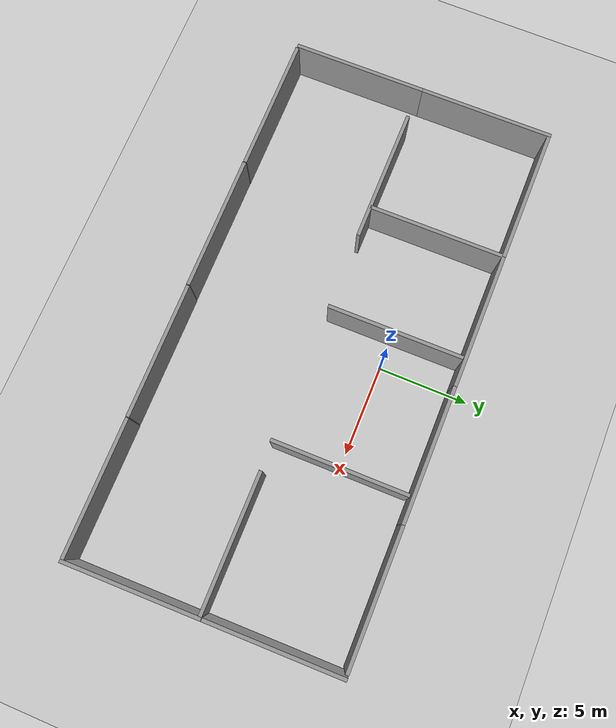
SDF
<sdf version="1.7">
 <world name="default">
  <light name="sun" type="directional">
   <pose>0 0 10 0 -0 0</pose>
   <diffuse>0.8 0.8 0.8 1</diffuse>
   <specular>0.2 0.2 0.2 1</specular>
   <attenuation>
    <range>1000</range>
    <constant>0.9</constant>
    <linear>0.01</linear>
    <quadratic>0.001</quadratic>
   </attenuation>
   <direction>-0.5 0.1 -0.9</direction>
   <spot><inner_angle>0</inner_angle><outer_angle>0</outer_angle><falloff>0</falloff></spot>
  </light>
  <model name="ground_plane">
   <static>1</static>
   <link name="link">
    <collision name="collision">
     <geometry><plane><normal>0 0 1</normal><size>100 100</size></plane></geometry>
     <surface><friction><ode><mu>100</mu><mu2>50</mu2></ode></friction></surface>
    </collision>
    <visual name="visual">
     <cast_shadows>0</cast_shadows>
     <geometry><plane><normal>0 0 1</normal><size>100 100</size></plane></geometry>
     <material>
      <script><uri>file://media/materials/scripts/gazebo.material</uri><name>Gazebo/Grey</name></script>
     </material>
    </visual>
   </link>
  </model>
  <gravity>0 0 -9.8</gravity>
  <magnetic_field>6e-06 2.3e-05 -4.2e-05</magnetic_field>
  <atmosphere type="adiabatic"/>
  <physics type="ode">
   <max_step_size>0.001</max_step_size>
   <real_time_factor>1</real_time_factor>
   <real_time_update_rate>1000</real_time_update_rate>
  </physics>
  <scene><ambient>0.4 0.4 0.4 1</ambient><background>0.7 0.7 0.7 1</background><shadows>1</shadows></scene>
  <audio><device>default</device></audio>
  <spherical_coordinates>
   <surface_model>EARTH_WGS84</surface_model>
   <latitude_deg>0</latitude_deg>
   <longitude_deg>0</longitude_deg>
   <elevation>0</elevation>
   <heading_deg>0</heading_deg>
  </spherical_coordinates>
  <model name="grey_wall">
   <static>1</static>
   <link name="link">
    <pose>0 0 1.4 0 -0 0</pose>
    <collision name="collision"><geometry><box><size>7.5 0.2 2.8</size></box></geometry></collision>
    <visual name="visual">
     <cast_shadows>0</cast_shadows>
     <geometry><box><size>7.5 0.2 2.8</size></box></geometry>
     <material>
      <script>
       <uri>model://grey_wall/materials/scripts</uri>
       <uri>model://grey_wall/materials/textures</uri>
       <name>vrc/grey_wall</name>
      </script>
     </material>
    </visual>
   </link>
   <pose>-3.76263 3.93263 0 0 -0 0</pose>
  </model>
  <model name="grey_wall_clone">
   <static>1</static>
   <link name="link">
    <pose>0 0 1.4 0 -0 0</pose>
    <collision name="collision"><geometry><box><size>7.5 0.2 2.8</size></box></geometry></collision>
    <visual name="visual">
     <cast_shadows>0</cast_shadows>
     <geometry><box><size>7.5 0.2 2.8</size></box></geometry>
     <material>
      <script>
       <uri>model://grey_wall/materials/scripts</uri>
       <uri>model://grey_wall/materials/textures</uri>
       <name>vrc/grey_wall</name>
      </script>
     </material>
    </visual>
   </link>
   <pose>3.70168 3.92505 0 0 -0 0</pose>
  </model>
  <model name="grey_wall_clone_0">
   <static>1</static>
   <link name="link">
    <pose>0 0 1.4 0 -0 0</pose>
    <collision name="collision"><geometry><box><size>7.5 0.2 2.8</size></box></geometry></collision>
    <visual name="visual">
     <cast_shadows>0</cast_shadows>
     <geometry><box><size>7.5 0.2 2.8</size></box></geometry>
     <material>
      <script>
       <uri>model://grey_wall/materials/scripts</uri>
       <uri>model://grey_wall/materials/textures</uri>
       <name>vrc/grey_wall</name>
      </script>
     </material>
    </visual>
   </link>
   <pose>-11.2675 3.93338 0 0 -0 0</pose>
  </model>
  <model name="grey_wall_clone_clone">
   <static>1</static>
   <link name="link">
    <pose>0 0 1.4 0 -0 0</pose>
    <collision name="collision"><geometry><box><size>7.5 0.2 2.8</size></box></geometry></collision>
    <visual name="visual">
     <cast_shadows>0</cast_shadows>
     <geometry><box><size>7.5 0.2 2.8</size></box></geometry>
     <material>
      <script>
       <uri>model://grey_wall/materials/scripts</uri>
       <uri>model://grey_wall/materials/textures</uri>
       <name>vrc/grey_wall</name>
      </script>
     </material>
    </visual>
   </link>
   <pose>11.1973 3.92886 0 0 -0 0</pose>
  </model>
  <model name="grey_wall_clone_0_clone">
   <static>1</static>
   <link name="link">
    <pose>0 0 1.4 0 -0 0</pose>
    <collision name="collision"><geometry><box><size>7.5 0.2 2.8</size></box></geometry></collision>
    <visual name="visual">
     <cast_shadows>0</cast_shadows>
     <geometry><box><size>7.5 0.2 2.8</size></box></geometry>
     <material>
      <script>
       <uri>model://grey_wall/materials/scripts</uri>
       <uri>model://grey_wall/materials/textures</uri>
       <name>vrc/grey_wall</name>
      </script>
     </material>
    </visual>
   </link>
   <pose>-15.0773 0.270696 0 0 -0 1.57603</pose>
  </model>
  <model name="grey_wall_clone_0_clone_clone">
   <static>1</static>
   <link name="link">
    <pose>0 0 1.4 0 -0 0</pose>
    <collision name="collision"><geometry><box><size>7.5 0.2 2.8</size></box></geometry></collision>
    <visual name="visual">
     <cast_shadows>0</cast_shadows>
     <geometry><box><size>7.5 0.2 2.8</size></box></geometry>
     <material>
      <script>
       <uri>model://grey_wall/materials/scripts</uri>
       <uri>model://grey_wall/materials/textures</uri>
       <name>vrc/grey_wall</name>
      </script>
     </material>
    </visual>
   </link>
   <pose>15.1887 0.283536 0 0 -0 1.5831</pose>
  </model>
  <model name="grey_wall_clone_0_clone_clone_clone">
   <static>1</static>
   <link name="link">
    <pose>0 0 1.4 0 -0 0</pose>
    <collision name="collision"><geometry><box><size>7.5 0.2 2.8</size></box></geometry></collision>
    <visual name="visual">
     <cast_shadows>0</cast_shadows>
     <geometry><box><size>7.5 0.2 2.8</size></box></geometry>
     <material>
      <script>
       <uri>model://grey_wall/materials/scripts</uri>
       <uri>model://grey_wall/materials/textures</uri>
       <name>vrc/grey_wall</name>
      </script>
     </material>
    </visual>
   </link>
   <pose>15.2818 -7.23348 0 0 -0 1.5831</pose>
  </model>
  <model name="grey_wall_clone_0_clone_clone_0">
   <static>1</static>
   <link name="link">
    <pose>0 0 1.4 0 -0 0</pose>
    <collision name="collision"><geometry><box><size>7.5 0.2 2.8</size></box></geometry></collision>
    <visual name="visual">
     <cast_shadows>0</cast_shadows>
     <geometry><box><size>7.5 0.2 2.8</size></box></geometry>
     <material>
      <script>
       <uri>model://grey_wall/materials/scripts</uri>
       <uri>model://grey_wall/materials/textures</uri>
       <name>vrc/grey_wall</name>
      </script>
     </material>
    </visual>
   </link>
   <pose>-15.037 -7.21703 0 0 -0 1.57603</pose>
  </model>
  <model name="grey_wall_clone_clone_clone">
   <static>1</static>
   <link name="link">
    <pose>0 0 1.4 0 -0 0</pose>
    <collision name="collision"><geometry><box><size>7.5 0.2 2.8</size></box></geometry></collision>
    <visual name="visual">
     <cast_shadows>0</cast_shadows>
     <geometry><box><size>7.5 0.2 2.8</size></box></geometry>
     <material>
      <script>
       <uri>model://grey_wall/materials/scripts</uri>
       <uri>model://grey_wall/materials/textures</uri>
       <name>vrc/grey_wall</name>
      </script>
     </material>
    </visual>
   </link>
   <pose>11.4856 -10.8946 0 0 -0 0</pose>
  </model>
  <model name="grey_wall_clone_clone_clone_clone">
   <static>1</static>
   <link name="link">
    <pose>0 0 1.4 0 -0 0</pose>
    <collision name="collision"><geometry><box><size>7.5 0.2 2.8</size></box></geometry></collision>
    <visual name="visual">
     <cast_shadows>0</cast_shadows>
     <geometry><box><size>7.5 0.2 2.8</size></box></geometry>
     <material>
      <script>
       <uri>model://grey_wall/materials/scripts</uri>
       <uri>model://grey_wall/materials/textures</uri>
       <name>vrc/grey_wall</name>
      </script>
     </material>
    </visual>
   </link>
   <pose>3.9499 -10.906 0 0 -0 0</pose>
  </model>
  <model name="grey_wall_clone_clone_clone_clone_clone">
   <static>1</static>
   <link name="link">
    <pose>0 0 1.4 0 -0 0</pose>
    <collision name="collision"><geometry><box><size>7.5 0.2 2.8</size></box></geometry></collision>
    <visual name="visual">
     <cast_shadows>0</cast_shadows>
     <geometry><box><size>7.5 0.2 2.8</size></box></geometry>
     <material>
      <script>
       <uri>model://grey_wall/materials/scripts</uri>
       <uri>model://grey_wall/materials/textures</uri>
       <name>vrc/grey_wall</name>
      </script>
     </material>
    </visual>
   </link>
   <pose>-3.58797 -10.9229 0 0 -0 0</pose>
  </model>
  <model name="grey_wall_clone_clone_clone_clone_clone_clone">
   <static>1</static>
   <link name="link">
    <pose>0 0 1.4 0 -0 0</pose>
    <collision name="collision"><geometry><box><size>7.5 0.2 2.8</size></box></geometry></collision>
    <visual name="visual">
     <cast_shadows>0</cast_shadows>
     <geometry><box><size>7.5 0.2 2.8</size></box></geometry>
     <material>
      <script>
       <uri>model://grey_wall/materials/scripts</uri>
       <uri>model://grey_wall/materials/textures</uri>
       <name>vrc/grey_wall</name>
      </script>
     </material>
    </visual>
   </link>
   <pose>-11.1156 -10.9151 0 0 -0 0</pose>
  </model>
  <model name="grey_wall_clone_clone_clone_clone_clone_clone_clone">
   <static>1</static>
   <link name="link">
    <pose>0 0 1.4 0 -0 0</pose>
    <collision name="collision"><geometry><box><size>7.5 0.2 2.8</size></box></geometry></collision>
    <visual name="visual">
     <cast_shadows>0</cast_shadows>
     <geometry><box><size>7.5 0.2 2.8</size></box></geometry>
     <material>
      <script>
       <uri>model://grey_wall/materials/scripts</uri>
       <uri>model://grey_wall/materials/textures</uri>
       <name>vrc/grey_wall</name>
      </script>
     </material>
    </visual>
   </link>
   <pose>-9.5099 -3.65499 0 0 -0 0</pose>
  </model>
  <model name="grey_wall_clone_0_clone_clone_1">
   <static>1</static>
   <link name="link">
    <pose>0 0 1.4 0 -0 0</pose>
    <collision name="collision"><geometry><box><size>7.5 0.2 2.8</size></box></geometry></collision>
    <visual name="visual">
     <cast_shadows>0</cast_shadows>
     <geometry><box><size>7.5 0.2 2.8</size></box></geometry>
     <material>
      <script>
       <uri>model://grey_wall/materials/scripts</uri>
       <uri>model://grey_wall/materials/textures</uri>
       <name>vrc/grey_wall</name>
      </script>
     </material>
    </visual>
   </link>
   <pose>-7.53136 0.11839 0 0 -0 1.57603</pose>
  </model>
  <model name="grey_wall_clone_0_clone_clone_1_clone">
   <static>1</static>
   <link name="link">
    <pose>0 0 1.4 0 -0 0</pose>
    <collision name="collision"><geometry><box><size>7.5 0.2 2.8</size></box></geometry></collision>
    <visual name="visual">
     <cast_shadows>0</cast_shadows>
     <geometry><box><size>7.5 0.2 2.8</size></box></geometry>
     <material>
      <script>
       <uri>model://grey_wall/materials/scripts</uri>
       <uri>model://grey_wall/materials/textures</uri>
       <name>vrc/grey_wall</name>
      </script>
     </material>
    </visual>
   </link>
   <pose>-1.55142 0.069941 0 0 -0 1.57603</pose>
  </model>
  <model name="grey_wall_clone_0_clone_clone_1_clone_clone">
   <static>1</static>
   <link name="link">
    <pose>0 0 1.4 0 -0 0</pose>
    <collision name="collision"><geometry><box><size>7.5 0.2 2.8</size></box></geometry></collision>
    <visual name="visual">
     <cast_shadows>0</cast_shadows>
     <geometry><box><size>7.5 0.2 2.8</size></box></geometry>
     <material>
      <script>
       <uri>model://grey_wall/materials/scripts</uri>
       <uri>model://grey_wall/materials/textures</uri>
       <name>vrc/grey_wall</name>
      </script>
     </material>
    </visual>
   </link>
   <pose>6.02283 -0.009197 0 0 -0 1.57603</pose>
  </model>
  <model name="grey_wall_clone_clone_clone_clone_clone_clone_clone_clone">
   <static>1</static>
   <link name="link">
    <pose>0 0 1.4 0 -0 0</pose>
    <collision name="collision"><geometry><box><size>7.5 0.2 2.8</size></box></geometry></collision>
    <visual name="visual">
     <cast_shadows>0</cast_shadows>
     <geometry><box><size>7.5 0.2 2.8</size></box></geometry>
     <material>
      <script>
       <uri>model://grey_wall/materials/scripts</uri>
       <uri>model://grey_wall/materials/textures</uri>
       <name>vrc/grey_wall</name>
      </script>
     </material>
    </visual>
   </link>
   <pose>11.3958 -3.59342 0 0 -0 0</pose>
  </model>
 </world>
</sdf>
